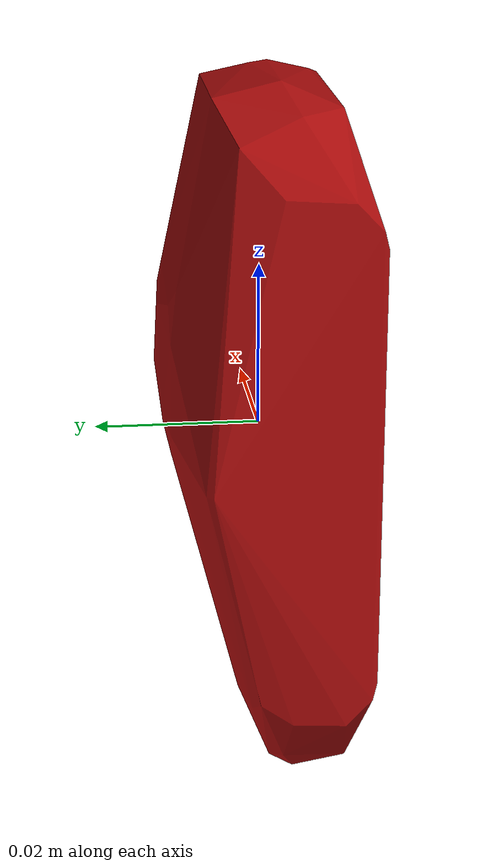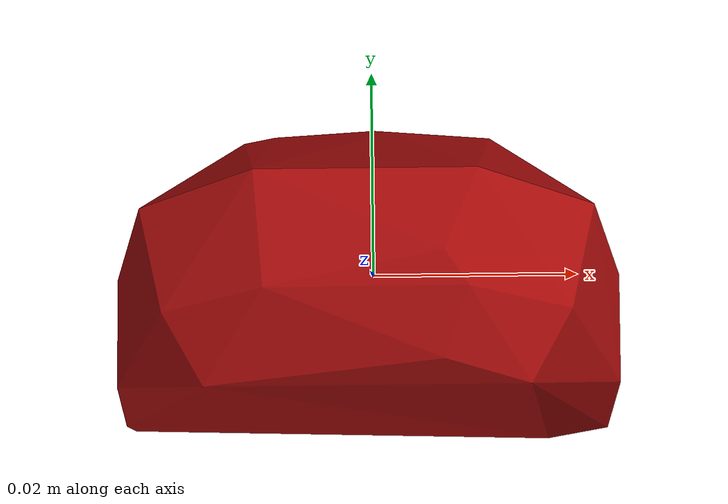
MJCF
<mujoco model="shapenet17-1">
  <asset>
    <mesh file="meshes/shapenet17-1/shapenet17-1_0.stl" name="shapenet17-1_0" scale="0.1 0.1 0.1"/>
  </asset>
  <worldbody>
    <body>
      <body name="collision">
        <geom pos="0 0 0" mesh="shapenet17-1_0" type="mesh" solimp="0.998 0.998 0.001" solref="0.001 1" density="100" friction="0.95 0.3 0.1" rgba="0.65 0.04 0.04 1" group="1" condim="4"/>
      </body>
      <body name="visual">
        <geom pos="0 0 0" mesh="shapenet17-1_0" type="mesh" rgba="0 1 0 1" conaffinity="0" contype="0" group="0" mass="0.0001"/>
      </body>
      <site rgba="0 0 0 0" size="0.005" pos="0 0 -0.06" name="bottom_site"/>
      <site rgba="0 0 0 0" size="0.005" pos="0 0 0.04" name="top_site"/>
      <site rgba="0 0 0 0" size="0.005" pos="0.025 0.025 0" name="horizontal_radius_site"/>
    </body>
  </worldbody>
</mujoco>
